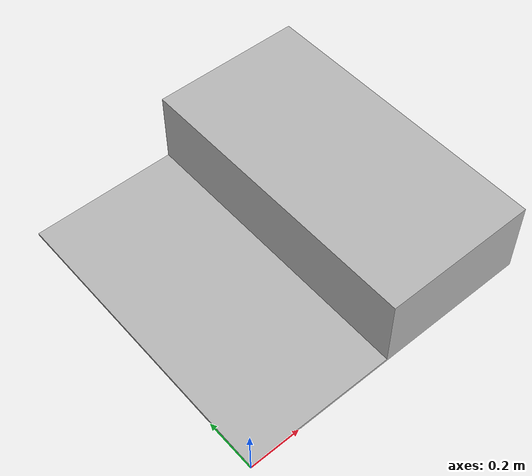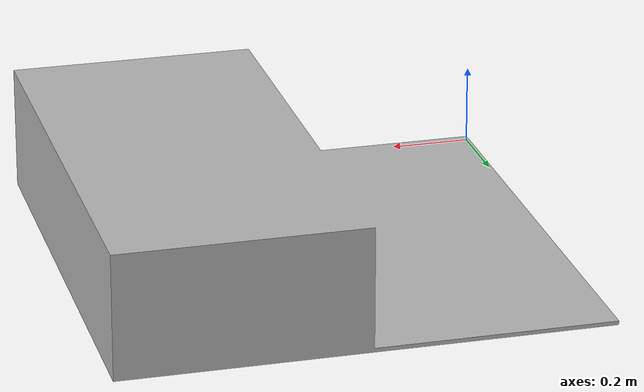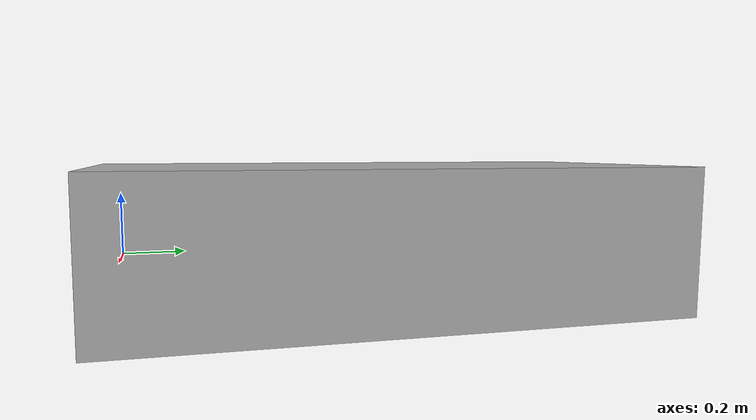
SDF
<?xml version="1.0" ?>
<sdf version="1.5">
  <model name="Step30">
        <static>true</static>
    <link name="link">
    <gravity>0</gravity>
      <collision name="collision">
        <geometry>
          <mesh>
            <scale>1 1 1</scale>
            <uri>model://step_30/meshes/step30.dae</uri>
          </mesh>
        </geometry>
      </collision>
      <visual name="visual">
        <geometry>
          <mesh>
            <scale>1 1 1</scale>
            <uri>model://step_30/meshes/step30.dae</uri>
          </mesh>
        </geometry>
      </visual>
    </link>
  </model>
</sdf>
